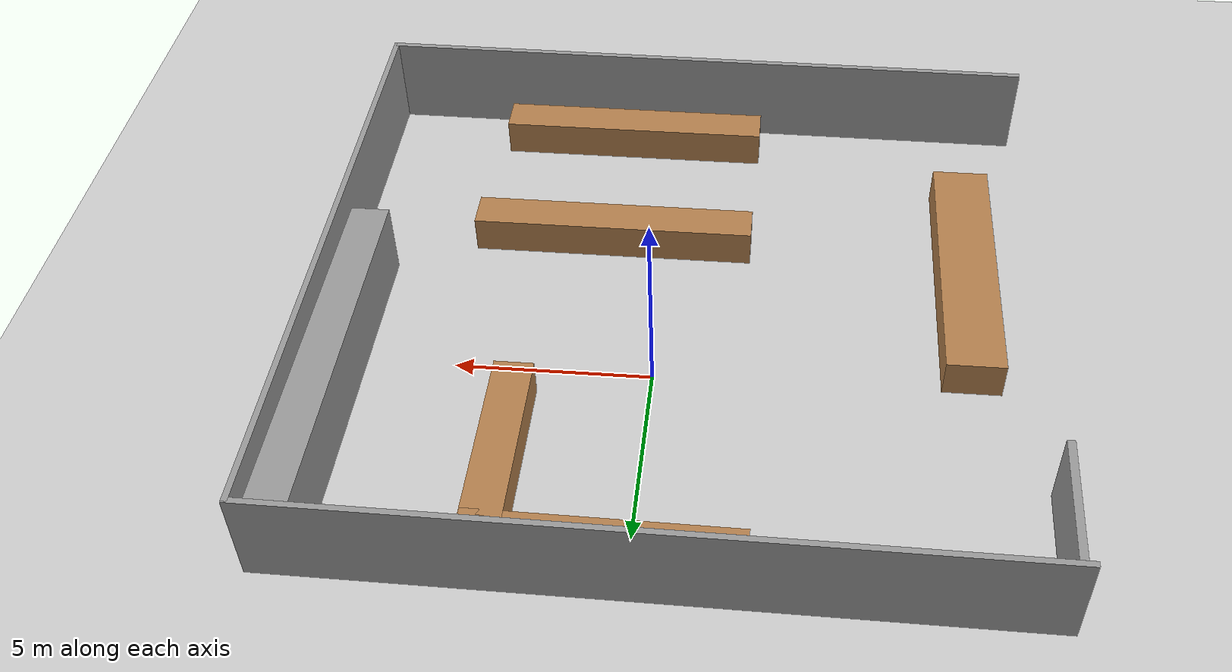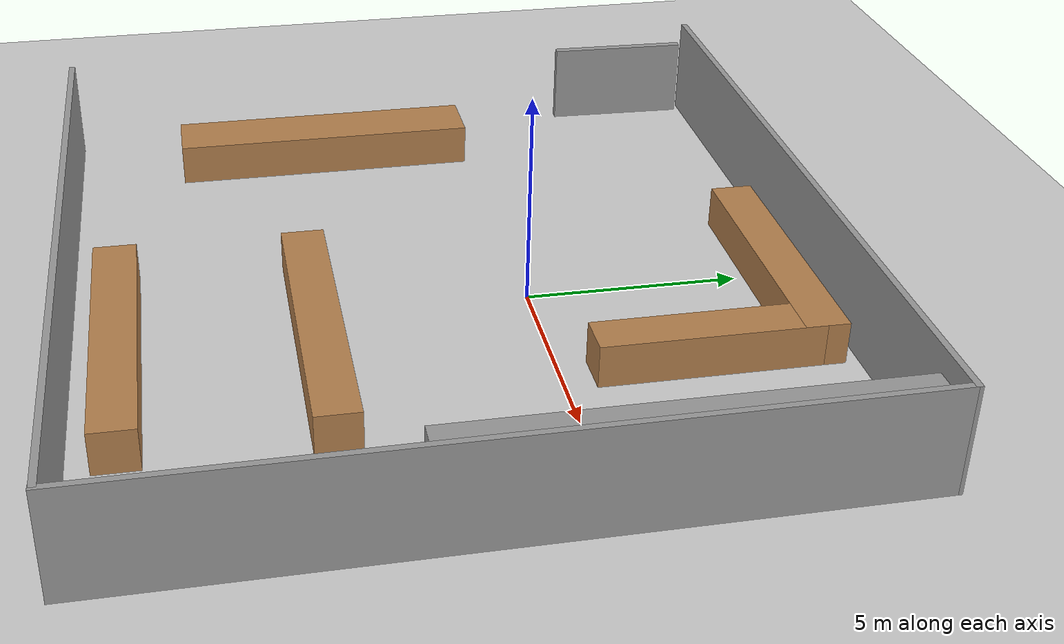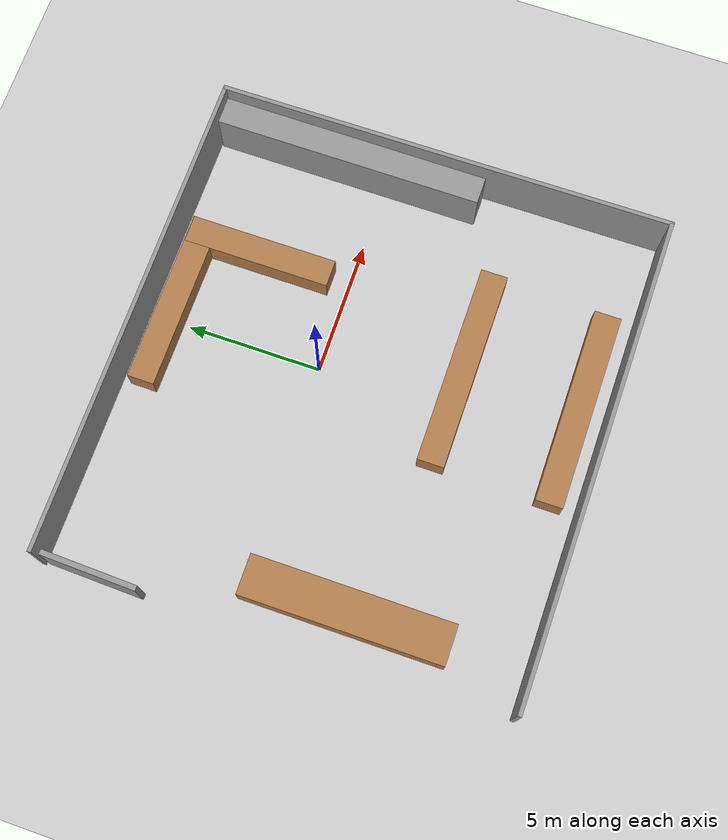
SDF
<?xml version="1.0"?>
<sdf version="1.7">

  <!-- Define the world with physics, plugins, and lighting -->
  <world name="supermarket">
    <!-- Physics Settings -->
    <physics name="default_physics" type="ode">
      <max_step_size>0.001</max_step_size>
      <real_time_factor>1.0</real_time_factor>
    </physics>

    <!-- Gazebo Plugins -->
    <plugin filename="gz-sim-physics-system" name="gz::sim::systems::Physics"/>
    <plugin filename="gz-sim-user-commands-system" name="gz::sim::systems::UserCommands"/>
    <plugin filename="gz-sim-scene-broadcaster-system" name="gz::sim::systems::SceneBroadcaster"/>
    <plugin filename="gz-sim-contact-system" name="gz::sim::systems::Contact"/>
    <plugin filename="gz-sim-sensors-system" name="gz::sim::systems::Sensors">
      <render_engine>ogre2</render_engine>
    </plugin>
    <plugin filename="gz-sim-imu-system" name="gz::sim::systems::Imu"/>

    <!-- Light Source -->
    <light type="directional" name="sun">
      <cast_shadows>true</cast_shadows>
      <pose>0 0 10 0 0 0</pose>
      <diffuse>0.8 0.8 0.8 1</diffuse>
      <specular>0.2 0.2 0.2 1</specular>
      <attenuation>
        <range>1000</range>
        <constant>0.9</constant>
        <linear>0.01</linear>
        <quadratic>0.001</quadratic>
      </attenuation>
      <direction>-0.5 0.1 -0.9</direction>
    </light>

    <!-- Gravity Settings -->
    <gravity>0 0 -9.81</gravity>

    <!-- Ground Plane to Prevent Objects from Falling -->
    <model name="ground_plane">
      <static>true</static>
      <link name="link">
        <collision name="collision">
          <geometry>
            <plane>
              <normal>0 0 1</normal>
              <size>100 100</size>
            </plane>
          </geometry>
        </collision>
        <visual name="visual">
          <geometry>
            <plane>
              <normal>0 0 1</normal>
              <size>100 100</size>
            </plane>
          </geometry>
          <material>
            <ambient>0.8 0.8 0.8 1</ambient>
            <diffuse>0.8 0.8 0.8 1</diffuse>
            <specular>0.8 0.8 0.8 1</specular>
          </material>
        </visual>
      </link>
    </model>

    <!-- Supermarket Model with Walls -->
    <model name="supermarket">
      <pose>-0.605 -1.8675 0 0 -0 0</pose>
      <static>true</static>
    <link name='Door_3'>
      <collision name='Door_3_Collision'>
        <geometry>
          <box>
            <size>3.52047 0.2 2</size>
          </box>
        </geometry>
        <pose>0 0 1 0 -0 0</pose>
      </collision>
      <visual name='Door_3_Visual'>
        <pose>0 0 1 0 -0 0</pose>
        <geometry>
          <box>
            <size>3.52047 0.2 2</size>
          </box>
        </geometry>
        <material>
          <script>
            <uri>file://media/materials/scripts/gazebo.material</uri>
            <name>Gazebo/Grey</name>
          </script>
        </material>
      </visual>
      <pose>-9.08728 6.58828 0 0 -0 1.54244</pose>
    </link>
    <link name='Wall_14'>
      <collision name='Wall_14_Collision'>
        <geometry>
          <box>
            <size>18.1697 0.15 2.5</size>
          </box>
        </geometry>
        <pose>0 0 1.25 0 -0 0</pose>
      </collision>
      <visual name='Wall_14_Visual'>
        <pose>0 0 1.25 0 -0 0</pose>
        <geometry>
          <box>
            <size>18.1697 0.15 2.5</size>
          </box>
        </geometry>
        <material>
          <script>
            <uri>file://media/materials/scripts/gazebo.material</uri>
            <name>Gazebo/Grey</name>
          </script>
          <ambient>1 1 1 1</ambient>
        </material>
        <meta>
          <layer>0</layer>
        </meta>
      </visual>
      <pose>0.059417 -8.49944 0 0 -0 -0.004465</pose>
    </link>
    <link name='Wall_16'>
      <collision name='Wall_16_Collision'>
        <geometry>
          <box>
            <size>10 1 2</size>
          </box>
        </geometry>
        <pose>0 0 1 0 -0 0</pose>
      </collision>
      <visual name='Wall_16_Visual'>
        <pose>0 0 1 0 -0 0</pose>
        <geometry>
          <box>
            <size>10 1 2</size>
          </box>
        </geometry>
        <material>
          <script>
            <uri>file://media/materials/scripts/gazebo.material</uri>
            <name>Gazebo/Grey</name>
          </script>
          <ambient>1 1 1 1</ambient>
        </material>
        <meta>
          <layer>0</layer>
        </meta>
      </visual>
      <pose>8.37327 3.29726 0 0 -0 -1.5708</pose>
    </link>
    <link name='Wall_18'>
      <collision name='Wall_18_Collision'>
        <geometry>
          <box>
            <size>7.35 1 1</size>
          </box>
        </geometry>
        <pose>0 0 0.5 0 -0 0</pose>
      </collision>
      <visual name='Wall_18_Visual'>
        <pose>0 0 0.5 0 -0 0</pose>
        <geometry>
          <box>
            <size>7.35 1 1</size>
          </box>
        </geometry>
        <material>
          <script>
            <uri>file://media/materials/scripts/gazebo.material</uri>
            <name>Gazebo/Wood</name>
          </script>
          <ambient>1 1 1 1</ambient>
        </material>
        <meta>
          <layer>0</layer>
        </meta>
      </visual>
      <pose>1.99124 -7.43049 0 0 -0 3.14159</pose>
    </link>
    <link name='Wall_20'>
      <collision name='Wall_20_Collision'>
        <geometry>
          <box>
            <size>7.5 1.5 1</size>
          </box>
        </geometry>
        <pose>0 0 0.5 0 -0 0</pose>
      </collision>
      <visual name='Wall_20_Visual'>
        <pose>0 0 0.5 0 -0 0</pose>
        <geometry>
          <box>
            <size>7.5 1.5 1</size>
          </box>
        </geometry>
        <material>
          <script>
            <uri>file://media/materials/scripts/gazebo.material</uri>
            <name>Gazebo/Wood</name>
          </script>
          <ambient>1 1 1 1</ambient>
        </material>
        <meta>
          <layer>0</layer>
        </meta>
      </visual>
      <pose>-7.3851 -1.99107 0 0 -0 1.5708</pose>
    </link>
    <link name='Wall_26'>
      <collision name='Wall_26_Collision'>
        <geometry>
          <box>
            <size>7.5 1 1</size>
          </box>
        </geometry>
        <pose>0 0 0.5 0 -0 0</pose>
      </collision>
      <visual name='Wall_26_Visual'>
        <pose>0 0 0.5 0 -0 0</pose>
        <geometry>
          <box>
            <size>7.5 1 1</size>
          </box>
        </geometry>
        <material>
          <script>
            <uri>file://media/materials/scripts/gazebo.material</uri>
            <name>Gazebo/Wood</name>
          </script>
          <ambient>1 1 1 1</ambient>
        </material>
        <meta>
          <layer>0</layer>
        </meta>
      </visual>
      <pose>2.10978 -3.08308 0 0 -0 3.14159</pose>
    </link>
    <link name='Wall_30'>
      <collision name='Wall_30_Collision'>
        <geometry>
          <box>
            <size>6.5114 1 1</size>
          </box>
        </geometry>
        <pose>0 0 0.5 0 -0 0</pose>
      </collision>
      <visual name='Wall_30_Visual'>
        <pose>0 0 0.5 0 -0 0</pose>
        <geometry>
          <box>
            <size>6.5114 1 1</size>
          </box>
        </geometry>
        <material>
          <script>
            <uri>file://media/materials/scripts/gazebo.material</uri>
            <name>Gazebo/Wood</name>
          </script>
          <ambient>1 1 1 1</ambient>
        </material>
        <meta>
          <layer>0</layer>
        </meta>
      </visual>
      <pose>1.17439 7.59628 0 0 -0 -0.009819</pose>
    </link>
    <link name='Wall_31'>
      <collision name='Wall_31_Collision'>
        <geometry>
          <box>
            <size>5.5 1 1</size>
          </box>
        </geometry>
        <pose>0 0 0.5 0 -0 0</pose>
      </collision>
      <visual name='Wall_31_Visual'>
        <pose>0 0 0.5 0 -0 0</pose>
        <geometry>
          <box>
            <size>5.5 1 1</size>
          </box>
        </geometry>
        <material>
          <script>
            <uri>file://media/materials/scripts/gazebo.material</uri>
            <name>Gazebo/Wood</name>
          </script>
          <ambient>1 1 1 1</ambient>
        </material>
        <meta>
          <layer>0</layer>
        </meta>
      </visual>
      <pose>3.92995 5.29911 0 0 -0 -1.5708</pose>
    </link>
    <link name='Wall_6'>
      <collision name='Wall_6_Collision'>
        <geometry>
          <box>
            <size>18.3172 0.15 2.5</size>
          </box>
        </geometry>
        <pose>0 0 1.25 0 -0 0</pose>
      </collision>
      <visual name='Wall_6_Visual'>
        <pose>0 0 1.25 0 -0 0</pose>
        <geometry>
          <box>
            <size>18.3172 0.15 2.5</size>
          </box>
        </geometry>
        <material>
          <script>
            <uri>file://media/materials/scripts/gazebo.material</uri>
            <name>Gazebo/Grey</name>
          </script>
          <ambient>1 1 1 1</ambient>
        </material>
        <meta>
          <layer>0</layer>
        </meta>
      </visual>
      <pose>-0.052412 8.47978 0 0 -0 -0.007746</pose>
    </link>
    <link name='Wall_7'>
      <collision name='Wall_7_Collision'>
        <geometry>
          <box>
            <size>17.075 0.15 2.5</size>
          </box>
        </geometry>
        <pose>0 0 1.25 0 -0 0</pose>
      </collision>
      <visual name='Wall_7_Visual'>
        <pose>0 0 1.25 0 -0 0</pose>
        <geometry>
          <box>
            <size>17.075 0.15 2.5</size>
          </box>
        </geometry>
        <material>
          <script>
            <uri>file://media/materials/scripts/gazebo.material</uri>
            <name>Gazebo/Grey</name>
          </script>
          <ambient>1 1 1 1</ambient>
        </material>
        <meta>
          <layer>0</layer>
        </meta>
      </visual>
      <pose>9.0834 -0.087904 0 0 -0 -1.5646</pose>
    </link>
    </model>
  </world>
</sdf>
